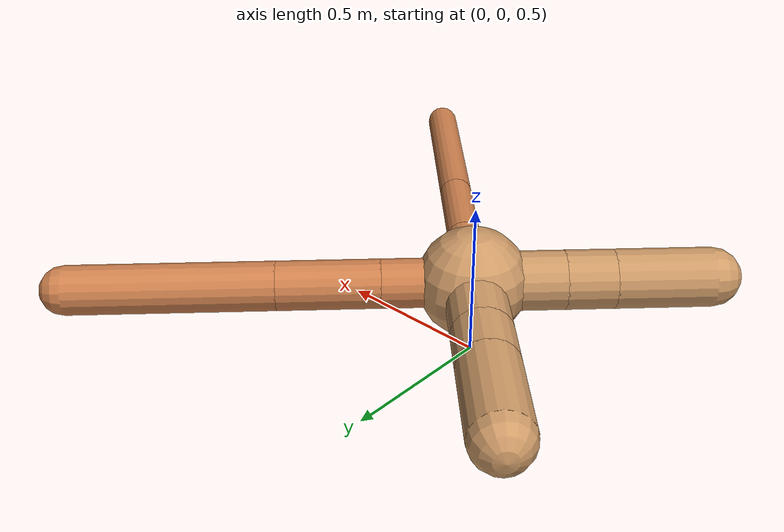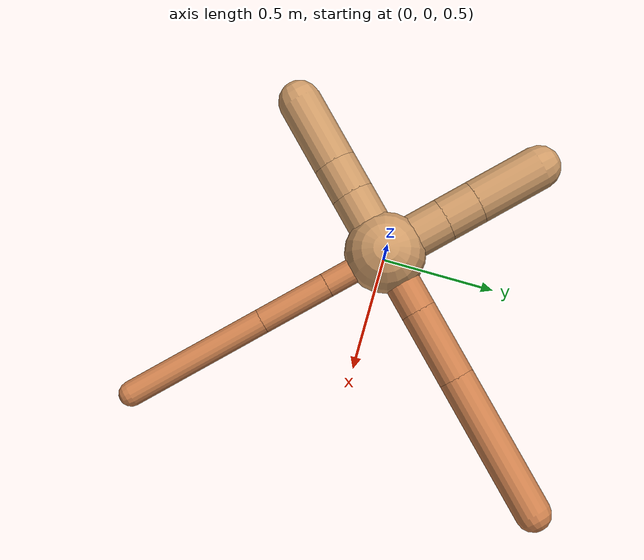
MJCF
<?xml version="1.0" ?>
<mujoco model="ant">

	<compiler angle="degree" coordinate="local" inertiafromgeom="true"/>

	<option integrator="RK4" timestep="0.01"/>

	<custom>

		<numeric data="0.0 0.0 0.55 1.0 0.0 0.0 0.0 0.0 1.0 0.0 -1.0 0.0 -1.0 0.0 1.0" name="init_qpos"/>

	</custom>

	<default>

		<joint armature="1" damping="1" limited="true"/>

		<geom conaffinity="0" condim="3" density="5.0" friction="1.5 0.1 0.1" margin="0.01" rgba="0.8 0.6 0.4 1"/>

	</default>

	<worldbody>

		<body name="torso" pos="0 0 0.75">

			<geom name="torso_geom" pos="0 0 0" size="0.17355317538963194" type="sphere"/>

			<!--joint armature="0" damping="0" limited="false" margin="0.01" name="root" pos="0 0 0" type="free"/-->

			<body name="front_left_leg" pos="0 0 0">

				<geom fromto="0 0 0 0.2 0.2 0" name="aux_1_geom" size="0.07706014713984748" type="capsule" rgba=".8 .5 .3 1"/>

				<body name="aux_1" pos="0.2 0.2 0">

					<joint axis="0 0 1" name="hip_1" pos="0.0 0.0 0.0" range="-40 40" type="hinge"/>

					<geom fromto="0 0 0 0.22651014425271132 0.22651014425271132 0" name="left_leg_geom" size="0.07706014713984748" type="capsule" rgba=".8 .5 .3 1"/>

					<body pos="0.22651014425271132 0.22651014425271132 0" name="front_left_foot">

						<joint axis="-1 1 0" name="ankle_1" pos="0.0 0.0 0.0" range="30 100" type="hinge"/>

						<geom fromto="0 0 0 0.45302028850542264 0.45302028850542264 0" name="left_ankle_geom" size="0.07706014713984748" type="capsule" rgba=".8 .5 .3 1"/>

					</body>

				</body>

			</body>

			<body name="front_right_leg" pos="0 0 0">

				<geom fromto="0 0 0 -0.2 0.2 0" name="aux_2_geom" size="0.09518370879094114" type="capsule"/>

				<body name="aux_2" pos="-0.2 0.2 0">

					<joint axis="0 0 1" name="hip_2" pos="0.0 0.0 0.0" range="-40 40" type="hinge"/>

					<geom fromto="0 0 0 -0.10865197780080096 0.10865197780080096 0" name="right_leg_geom" size="0.09518370879094114" type="capsule"/>

					<body pos="-0.10865197780080096 0.10865197780080096 0" name="front_right_foot">

						<joint axis="1 1 0" name="ankle_2" pos="0.0 0.0 0.0" range="-100 -30" type="hinge"/>

						<geom fromto="0 0 0 -0.21730395560160193 0.21730395560160193 0" name="right_ankle_geom" size="0.09518370879094114" type="capsule"/>

					</body>

				</body>

			</body>

			<body name="left_back_leg" pos="0 0 0">

				<geom fromto="0 0 0 -0.2 -0.2 0" name="aux_3_geom" size="0.09297219817788198" type="capsule"/>

				<body name="aux_3" pos="-0.2 -0.2 0">

					<joint axis="0 0 1" name="hip_3" pos="0.0 0.0 0.0" range="-40 40" type="hinge"/>

					<geom fromto="0 0 0 -0.10776001826550002 -0.10776001826550002 0" name="back_leg_geom" size="0.09297219817788198" type="capsule"/>

					<body pos="-0.10776001826550002 -0.10776001826550002 0" name="left_back_foot">

						<joint axis="-1 1 0" name="ankle_3" pos="0.0 0.0 0.0" range="-100 -30" type="hinge"/>

						<geom fromto="0 0 0 -0.21552003653100005 -0.21552003653100005 0" name="third_ankle_geom" size="0.09297219817788198" type="capsule"/>

					</body>

				</body>

			</body>

			<body name="right_back_leg" pos="0 0 0">

				<geom fromto="0 0 0 0.2 -0.2 0" name="aux_4_geom" size="0.05404245495882872" type="capsule" rgba=".8 .5 .3 1"/>

				<body name="aux_4" pos="0.2 -0.2 0">

					<joint axis="0 0 1" name="hip_4" pos="0.0 0.0 0.0" range="-40 40" type="hinge"/>

					<geom fromto="0 0 0 0.21879790064644836 -0.21879790064644836 0" name="rightback_leg_geom" size="0.05404245495882872" type="capsule" rgba=".8 .5 .3 1"/>

					<body pos="0.21879790064644836 -0.21879790064644836 0" name="right_back_foot">

						<joint axis="1 1 0" name="ankle_4" pos="0.0 0.0 0.0" range="30 100" type="hinge"/>

						<geom fromto="0 0 0 0.4375958012928967 -0.4375958012928967 0" name="fourth_ankle_geom" size="0.05404245495882872" type="capsule" rgba=".8 .5 .3 1"/>

					</body>

				</body>

			</body>

		</body>

	</worldbody>

	<actuator>

		<motor ctrllimited="true" ctrlrange="-1.0 1.0" joint="hip_4" gear="150"/>

		<motor ctrllimited="true" ctrlrange="-1.0 1.0" joint="ankle_4" gear="150"/>

		<motor ctrllimited="true" ctrlrange="-1.0 1.0" joint="hip_1" gear="150"/>

		<motor ctrllimited="true" ctrlrange="-1.0 1.0" joint="ankle_1" gear="150"/>

		<motor ctrllimited="true" ctrlrange="-1.0 1.0" joint="hip_2" gear="150"/>

		<motor ctrllimited="true" ctrlrange="-1.0 1.0" joint="ankle_2" gear="150"/>

		<motor ctrllimited="true" ctrlrange="-1.0 1.0" joint="hip_3" gear="150"/>

		<motor ctrllimited="true" ctrlrange="-1.0 1.0" joint="ankle_3" gear="150"/>

	</actuator>

</mujoco>
